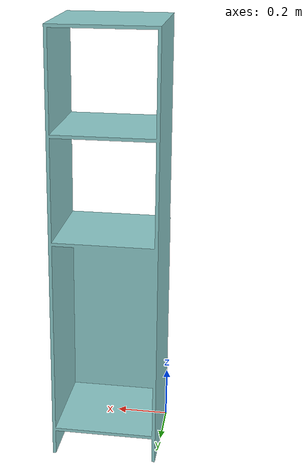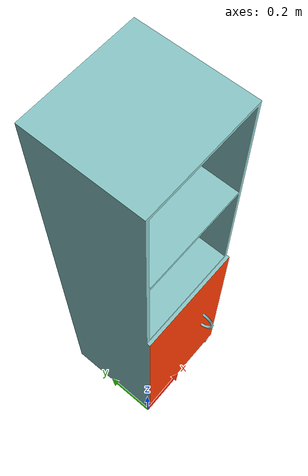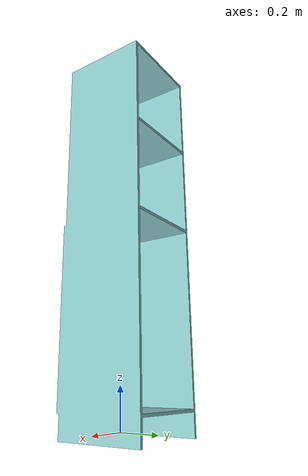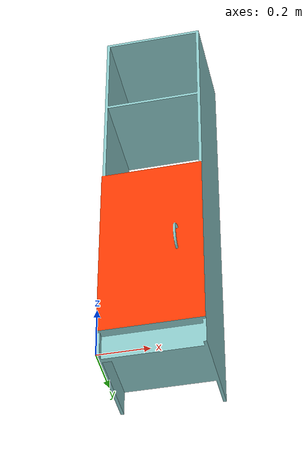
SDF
<?xml version="1.0"?>
<sdf version='1.6'>
  <model name='Shelf_FR'>
    <link name='Shelf_FR'>
      <pose frame=''>0 0 0 0 -0 0</pose>
      <inertial>
        <pose frame=''>0.19929 0.15638 0.79121 0 -0 0</pose>
        <mass>26.028</mass>
        <inertia>
          <ixx>7.1088</ixx>
          <ixy>0.00022715</ixy>
          <ixz>0.00034822</ixz>
          <iyy>7.4164</iyy>
          <iyz>0.30495</iyz>
          <izz>1.0756</izz>
        </inertia>
      </inertial>
      <collision name='Shelf_FR_collision'>
        <pose frame=''>0 0 0 1.5708 -0 0</pose>
        <geometry>
          <mesh>
            <scale>1 1 1</scale>
            <uri>model://Shelf_FR/meshes/Shelf_FR.dae</uri>
          </mesh>
        </geometry>
      </collision>
      <visual name='Shelf_FR_visual'>
        <pose frame=''>0 0 0 1.5708 -0 0</pose>
        <geometry>
          <mesh>
            <scale>1 1 1</scale>
            <uri>model://Shelf_FR/meshes/Shelf_FR.dae</uri>
          </mesh>
        </geometry>
      </visual>
    </link>
  </model>
</sdf>
